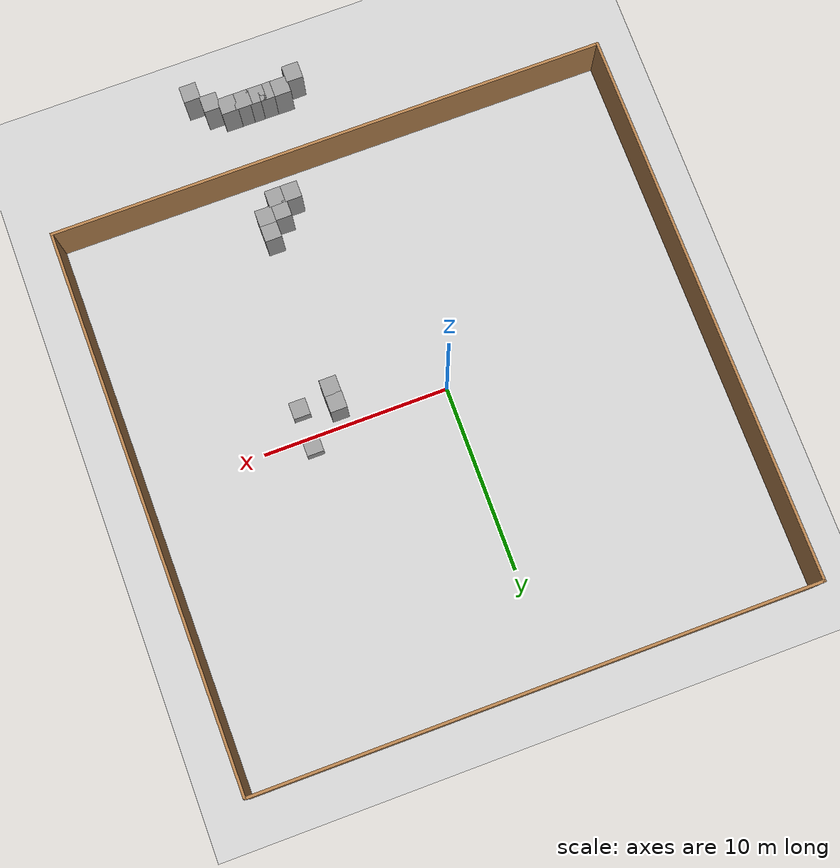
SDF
<sdf version="1.7">
 <world name="default">
  <model name="ground_plane">
   <static>1</static>
   <link name="link">
    <collision name="collision">
     <geometry><plane><normal>0 0 1</normal><size>100 100</size></plane></geometry>
     <surface><friction><ode><mu>100</mu><mu2>50</mu2></ode></friction></surface>
    </collision>
    <visual name="visual">
     <cast_shadows>0</cast_shadows>
     <geometry><plane><normal>0 0 1</normal><size>100 100</size></plane></geometry>
     <material>
      <script><uri>file://media/materials/scripts/gazebo.material</uri><name>Gazebo/Grey</name></script>
     </material>
    </visual>
   </link>
  </model>
  <model name="unit_box">
   <link name="link">
    <inertial>
     <mass>1</mass>
     <inertia>
      <ixx>0.166667</ixx>
      <ixy>0</ixy>
      <ixz>0</ixz>
      <iyy>0.166667</iyy>
      <iyz>0</iyz>
      <izz>0.166667</izz>
     </inertia>
    </inertial>
    <visual name="visual">
     <geometry><box><size>0.9 0.9 0.9</size></box></geometry>
     <material>
      <script><name>Gazebo/Grey</name><uri>file://media/materials/scripts/gazebo.material</uri></script>
      <shader type="pixel"><normal_map>__default__</normal_map></shader>
      <ambient>0.3 0.3 0.3 1</ambient>
      <diffuse>0.7 0.7 0.7 1</diffuse>
      <specular>0.01 0.01 0.01 1</specular>
      <emissive>0 0 0 1</emissive>
     </material>
    </visual>
    <collision name="collision">
     <geometry><box><size>0.9 0.9 0.9</size></box></geometry>
     <surface>
      <friction>
       <ode><mu>1</mu><mu2>1</mu2><fdir1>0 0 0</fdir1><slip1>0</slip1><slip2>0</slip2></ode>
       <torsional>
        <coefficient>1</coefficient>
        <patch_radius>0</patch_radius>
        <surface_radius>0</surface_radius>
        <use_patch_radius>1</use_patch_radius>
        <ode><slip>0</slip></ode>
       </torsional>
      </friction>
      <bounce><restitution_coefficient>0</restitution_coefficient><threshold>1e+06</threshold></bounce>
      <contact>
       <collide_without_contact>0</collide_without_contact>
       <collide_without_contact_bitmask>1</collide_without_contact_bitmask>
       <collide_bitmask>1</collide_bitmask>
       <ode>
        <soft_cfm>0</soft_cfm>
        <soft_erp>0.2</soft_erp>
        <kp>1e+13</kp>
        <kd>1</kd>
        <max_vel>0.01</max_vel>
        <min_depth>0</min_depth>
       </ode>
       <bullet>
        <split_impulse>1</split_impulse>
        <split_impulse_penetration_threshold>-0.01</split_impulse_penetration_threshold>
        <soft_cfm>0</soft_cfm>
        <soft_erp>0.2</soft_erp>
        <kp>1e+13</kp>
        <kd>1</kd>
       </bullet>
      </contact>
     </surface>
    </collision>
   </link>
   <link name="link_clone_clone">
    <inertial>
     <mass>1</mass>
     <inertia>
      <ixx>0.166667</ixx>
      <ixy>0</ixy>
      <ixz>0</ixz>
      <iyy>0.166667</iyy>
      <iyz>0</iyz>
      <izz>0.166667</izz>
     </inertia>
    </inertial>
    <pose>-0.004595 2.04241 0 0 -0 0</pose>
    <visual name="visual">
     <geometry><box><size>0.9 0.9 0.9</size></box></geometry>
     <material>
      <script><name>Gazebo/Grey</name><uri>file://media/materials/scripts/gazebo.material</uri></script>
      <shader type="pixel"><normal_map>__default__</normal_map></shader>
      <ambient>0.3 0.3 0.3 1</ambient>
      <diffuse>0.7 0.7 0.7 1</diffuse>
      <specular>0.01 0.01 0.01 1</specular>
      <emissive>0 0 0 1</emissive>
     </material>
    </visual>
    <collision name="collision">
     <geometry><box><size>0.9 0.9 0.9</size></box></geometry>
     <surface>
      <friction>
       <ode><mu>1</mu><mu2>1</mu2><fdir1>0 0 0</fdir1><slip1>0</slip1><slip2>0</slip2></ode>
       <torsional>
        <coefficient>1</coefficient>
        <patch_radius>0</patch_radius>
        <surface_radius>0</surface_radius>
        <use_patch_radius>1</use_patch_radius>
        <ode><slip>0</slip></ode>
       </torsional>
      </friction>
      <bounce><restitution_coefficient>0</restitution_coefficient><threshold>1e+06</threshold></bounce>
      <contact>
       <collide_without_contact>0</collide_without_contact>
       <collide_without_contact_bitmask>1</collide_without_contact_bitmask>
       <collide_bitmask>1</collide_bitmask>
       <ode>
        <soft_cfm>0</soft_cfm>
        <soft_erp>0.2</soft_erp>
        <kp>1e+13</kp>
        <kd>1</kd>
        <max_vel>0.01</max_vel>
        <min_depth>0</min_depth>
       </ode>
       <bullet>
        <split_impulse>1</split_impulse>
        <split_impulse_penetration_threshold>-0.01</split_impulse_penetration_threshold>
        <soft_cfm>0</soft_cfm>
        <soft_erp>0.2</soft_erp>
        <kp>1e+13</kp>
        <kd>1</kd>
       </bullet>
      </contact>
     </surface>
    </collision>
   </link>
   <static>0</static>
   <pose>7.51627 -1.49726 0.45 0 -0 0</pose>
  </model>
  <model name="unit_box_clone">
   <link name="link_clone_0_clone_clone_3_clone_2_clone_22">
    <inertial>
     <mass>1</mass>
     <inertia>
      <ixx>0.166667</ixx>
      <ixy>0</ixy>
      <ixz>0</ixz>
      <iyy>0.166667</iyy>
      <iyz>0</iyz>
      <izz>0.166667</izz>
     </inertia>
    </inertial>
    <pose>14.7375 0.847307 0 0 -0 0</pose>
    <visual name="visual">
     <geometry><box><size>0.9 0.9 4</size></box></geometry>
     <material>
      <script><name>Gazebo/Grey</name><uri>file://media/materials/scripts/gazebo.material</uri></script>
      <shader type="pixel"><normal_map>__default__</normal_map></shader>
      <ambient>0.3 0.3 0.3 1</ambient>
      <diffuse>0.7 0.7 0.7 1</diffuse>
      <specular>0.01 0.01 0.01 1</specular>
      <emissive>0 0 0 1</emissive>
     </material>
    </visual>
    <collision name="collision">
     <geometry><box><size>0.9 0.9 4</size></box></geometry>
     <surface>
      <friction>
       <ode><mu>1</mu><mu2>1</mu2><fdir1>0 0 0</fdir1><slip1>0</slip1><slip2>0</slip2></ode>
       <torsional>
        <coefficient>1</coefficient>
        <patch_radius>0</patch_radius>
        <surface_radius>0</surface_radius>
        <use_patch_radius>1</use_patch_radius>
        <ode><slip>0</slip></ode>
       </torsional>
      </friction>
      <bounce><restitution_coefficient>0</restitution_coefficient><threshold>1e+06</threshold></bounce>
      <contact>
       <collide_without_contact>0</collide_without_contact>
       <collide_without_contact_bitmask>1</collide_without_contact_bitmask>
       <collide_bitmask>1</collide_bitmask>
       <ode>
        <soft_cfm>0</soft_cfm>
        <soft_erp>0.2</soft_erp>
        <kp>1e+13</kp>
        <kd>1</kd>
        <max_vel>0.01</max_vel>
        <min_depth>0</min_depth>
       </ode>
       <bullet>
        <split_impulse>1</split_impulse>
        <split_impulse_penetration_threshold>-0.01</split_impulse_penetration_threshold>
        <soft_cfm>0</soft_cfm>
        <soft_erp>0.2</soft_erp>
        <kp>1e+13</kp>
        <kd>1</kd>
       </bullet>
      </contact>
     </surface>
    </collision>
   </link>
   <link name="link_clone_0_clone_clone_3_clone_2_clone_23">
    <inertial>
     <mass>1</mass>
     <inertia>
      <ixx>0.166667</ixx>
      <ixy>0</ixy>
      <ixz>0</ixz>
      <iyy>0.166667</iyy>
      <iyz>0</iyz>
      <izz>0.166667</izz>
     </inertia>
    </inertial>
    <pose>13.9151 1.72247 0 0 -0 0</pose>
    <visual name="visual">
     <geometry><box><size>0.9 0.9 4</size></box></geometry>
     <material>
      <script><name>Gazebo/Grey</name><uri>file://media/materials/scripts/gazebo.material</uri></script>
      <shader type="pixel"><normal_map>__default__</normal_map></shader>
      <ambient>0.3 0.3 0.3 1</ambient>
      <diffuse>0.7 0.7 0.7 1</diffuse>
      <specular>0.01 0.01 0.01 1</specular>
      <emissive>0 0 0 1</emissive>
     </material>
    </visual>
    <collision name="collision">
     <geometry><box><size>0.9 0.9 4</size></box></geometry>
     <surface>
      <friction>
       <ode><mu>1</mu><mu2>1</mu2><fdir1>0 0 0</fdir1><slip1>0</slip1><slip2>0</slip2></ode>
       <torsional>
        <coefficient>1</coefficient>
        <patch_radius>0</patch_radius>
        <surface_radius>0</surface_radius>
        <use_patch_radius>1</use_patch_radius>
        <ode><slip>0</slip></ode>
       </torsional>
      </friction>
      <bounce><restitution_coefficient>0</restitution_coefficient><threshold>1e+06</threshold></bounce>
      <contact>
       <collide_without_contact>0</collide_without_contact>
       <collide_without_contact_bitmask>1</collide_without_contact_bitmask>
       <collide_bitmask>1</collide_bitmask>
       <ode>
        <soft_cfm>0</soft_cfm>
        <soft_erp>0.2</soft_erp>
        <kp>1e+13</kp>
        <kd>1</kd>
        <max_vel>0.01</max_vel>
        <min_depth>0</min_depth>
       </ode>
       <bullet>
        <split_impulse>1</split_impulse>
        <split_impulse_penetration_threshold>-0.01</split_impulse_penetration_threshold>
        <soft_cfm>0</soft_cfm>
        <soft_erp>0.2</soft_erp>
        <kp>1e+13</kp>
        <kd>1</kd>
       </bullet>
      </contact>
     </surface>
    </collision>
   </link>
   <link name="link_clone_0_clone_clone_3_clone_2_clone_24">
    <inertial>
     <mass>1</mass>
     <inertia>
      <ixx>0.166667</ixx>
      <ixy>0</ixy>
      <ixz>0</ixz>
      <iyy>0.166667</iyy>
      <iyz>0</iyz>
      <izz>0.166667</izz>
     </inertia>
    </inertial>
    <pose>13.0875 2.15167 0 0 -0 0</pose>
    <visual name="visual">
     <geometry><box><size>0.9 0.9 4</size></box></geometry>
     <material>
      <script><name>Gazebo/Grey</name><uri>file://media/materials/scripts/gazebo.material</uri></script>
      <shader type="pixel"><normal_map>__default__</normal_map></shader>
      <ambient>0.3 0.3 0.3 1</ambient>
      <diffuse>0.7 0.7 0.7 1</diffuse>
      <specular>0.01 0.01 0.01 1</specular>
      <emissive>0 0 0 1</emissive>
     </material>
    </visual>
    <collision name="collision">
     <geometry><box><size>0.9 0.9 4</size></box></geometry>
     <surface>
      <friction>
       <ode><mu>1</mu><mu2>1</mu2><fdir1>0 0 0</fdir1><slip1>0</slip1><slip2>0</slip2></ode>
       <torsional>
        <coefficient>1</coefficient>
        <patch_radius>0</patch_radius>
        <surface_radius>0</surface_radius>
        <use_patch_radius>1</use_patch_radius>
        <ode><slip>0</slip></ode>
       </torsional>
      </friction>
      <bounce><restitution_coefficient>0</restitution_coefficient><threshold>1e+06</threshold></bounce>
      <contact>
       <collide_without_contact>0</collide_without_contact>
       <collide_without_contact_bitmask>1</collide_without_contact_bitmask>
       <collide_bitmask>1</collide_bitmask>
       <ode>
        <soft_cfm>0</soft_cfm>
        <soft_erp>0.2</soft_erp>
        <kp>1e+13</kp>
        <kd>1</kd>
        <max_vel>0.01</max_vel>
        <min_depth>0</min_depth>
       </ode>
       <bullet>
        <split_impulse>1</split_impulse>
        <split_impulse_penetration_threshold>-0.01</split_impulse_penetration_threshold>
        <soft_cfm>0</soft_cfm>
        <soft_erp>0.2</soft_erp>
        <kp>1e+13</kp>
        <kd>1</kd>
       </bullet>
      </contact>
     </surface>
    </collision>
   </link>
   <link name="link_clone_0_clone_clone_3_clone_2_clone_25">
    <inertial>
     <mass>1</mass>
     <inertia>
      <ixx>0.166667</ixx>
      <ixy>0</ixy>
      <ixz>0</ixz>
      <iyy>0.166667</iyy>
      <iyz>0</iyz>
      <izz>0.166667</izz>
     </inertia>
    </inertial>
    <pose>12.303 2.15067 0 0 -0 0</pose>
    <visual name="visual">
     <geometry><box><size>0.9 0.9 4</size></box></geometry>
     <material>
      <script><name>Gazebo/Grey</name><uri>file://media/materials/scripts/gazebo.material</uri></script>
      <shader type="pixel"><normal_map>__default__</normal_map></shader>
      <ambient>0.3 0.3 0.3 1</ambient>
      <diffuse>0.7 0.7 0.7 1</diffuse>
      <specular>0.01 0.01 0.01 1</specular>
      <emissive>0 0 0 1</emissive>
     </material>
    </visual>
    <collision name="collision">
     <geometry><box><size>0.9 0.9 4</size></box></geometry>
     <surface>
      <friction>
       <ode><mu>1</mu><mu2>1</mu2><fdir1>0 0 0</fdir1><slip1>0</slip1><slip2>0</slip2></ode>
       <torsional>
        <coefficient>1</coefficient>
        <patch_radius>0</patch_radius>
        <surface_radius>0</surface_radius>
        <use_patch_radius>1</use_patch_radius>
        <ode><slip>0</slip></ode>
       </torsional>
      </friction>
      <bounce><restitution_coefficient>0</restitution_coefficient><threshold>1e+06</threshold></bounce>
      <contact>
       <collide_without_contact>0</collide_without_contact>
       <collide_without_contact_bitmask>1</collide_without_contact_bitmask>
       <collide_bitmask>1</collide_bitmask>
       <ode>
        <soft_cfm>0</soft_cfm>
        <soft_erp>0.2</soft_erp>
        <kp>1e+13</kp>
        <kd>1</kd>
        <max_vel>0.01</max_vel>
        <min_depth>0</min_depth>
       </ode>
       <bullet>
        <split_impulse>1</split_impulse>
        <split_impulse_penetration_threshold>-0.01</split_impulse_penetration_threshold>
        <soft_cfm>0</soft_cfm>
        <soft_erp>0.2</soft_erp>
        <kp>1e+13</kp>
        <kd>1</kd>
       </bullet>
      </contact>
     </surface>
    </collision>
   </link>
   <link name="link_clone_0_clone_clone_3_clone_2_clone_26">
    <inertial>
     <mass>1</mass>
     <inertia>
      <ixx>0.166667</ixx>
      <ixy>0</ixy>
      <ixz>0</ixz>
      <iyy>0.166667</iyy>
      <iyz>0</iyz>
      <izz>0.166667</izz>
     </inertia>
    </inertial>
    <pose>11.5113 2.15271 0 0 -0 0</pose>
    <visual name="visual">
     <geometry><box><size>0.9 0.9 4</size></box></geometry>
     <material>
      <script><name>Gazebo/Grey</name><uri>file://media/materials/scripts/gazebo.material</uri></script>
      <shader type="pixel"><normal_map>__default__</normal_map></shader>
      <ambient>0.3 0.3 0.3 1</ambient>
      <diffuse>0.7 0.7 0.7 1</diffuse>
      <specular>0.01 0.01 0.01 1</specular>
      <emissive>0 0 0 1</emissive>
     </material>
    </visual>
    <collision name="collision">
     <geometry><box><size>0.9 0.9 4</size></box></geometry>
     <surface>
      <friction>
       <ode><mu>1</mu><mu2>1</mu2><fdir1>0 0 0</fdir1><slip1>0</slip1><slip2>0</slip2></ode>
       <torsional>
        <coefficient>1</coefficient>
        <patch_radius>0</patch_radius>
        <surface_radius>0</surface_radius>
        <use_patch_radius>1</use_patch_radius>
        <ode><slip>0</slip></ode>
       </torsional>
      </friction>
      <bounce><restitution_coefficient>0</restitution_coefficient><threshold>1e+06</threshold></bounce>
      <contact>
       <collide_without_contact>0</collide_without_contact>
       <collide_without_contact_bitmask>1</collide_without_contact_bitmask>
       <collide_bitmask>1</collide_bitmask>
       <ode>
        <soft_cfm>0</soft_cfm>
        <soft_erp>0.2</soft_erp>
        <kp>1e+13</kp>
        <kd>1</kd>
        <max_vel>0.01</max_vel>
        <min_depth>0</min_depth>
       </ode>
       <bullet>
        <split_impulse>1</split_impulse>
        <split_impulse_penetration_threshold>-0.01</split_impulse_penetration_threshold>
        <soft_cfm>0</soft_cfm>
        <soft_erp>0.2</soft_erp>
        <kp>1e+13</kp>
        <kd>1</kd>
       </bullet>
      </contact>
     </surface>
    </collision>
   </link>
   <link name="link_clone_0_clone_clone_3_clone_2_clone_27">
    <inertial>
     <mass>1</mass>
     <inertia>
      <ixx>0.166667</ixx>
      <ixy>0</ixy>
      <ixz>0</ixz>
      <iyy>0.166667</iyy>
      <iyz>0</iyz>
      <izz>0.166667</izz>
     </inertia>
    </inertial>
    <pose>10.9377 2.1528 0 0 -0 0</pose>
    <visual name="visual">
     <geometry><box><size>0.9 0.9 4</size></box></geometry>
     <material>
      <script><name>Gazebo/Grey</name><uri>file://media/materials/scripts/gazebo.material</uri></script>
      <shader type="pixel"><normal_map>__default__</normal_map></shader>
      <ambient>0.3 0.3 0.3 1</ambient>
      <diffuse>0.7 0.7 0.7 1</diffuse>
      <specular>0.01 0.01 0.01 1</specular>
      <emissive>0 0 0 1</emissive>
     </material>
    </visual>
    <collision name="collision">
     <geometry><box><size>0.9 0.9 4</size></box></geometry>
     <surface>
      <friction>
       <ode><mu>1</mu><mu2>1</mu2><fdir1>0 0 0</fdir1><slip1>0</slip1><slip2>0</slip2></ode>
       <torsional>
        <coefficient>1</coefficient>
        <patch_radius>0</patch_radius>
        <surface_radius>0</surface_radius>
        <use_patch_radius>1</use_patch_radius>
        <ode><slip>0</slip></ode>
       </torsional>
      </friction>
      <bounce><restitution_coefficient>0</restitution_coefficient><threshold>1e+06</threshold></bounce>
      <contact>
       <collide_without_contact>0</collide_without_contact>
       <collide_without_contact_bitmask>1</collide_without_contact_bitmask>
       <collide_bitmask>1</collide_bitmask>
       <ode>
        <soft_cfm>0</soft_cfm>
        <soft_erp>0.2</soft_erp>
        <kp>1e+13</kp>
        <kd>1</kd>
        <max_vel>0.01</max_vel>
        <min_depth>0</min_depth>
       </ode>
       <bullet>
        <split_impulse>1</split_impulse>
        <split_impulse_penetration_threshold>-0.01</split_impulse_penetration_threshold>
        <soft_cfm>0</soft_cfm>
        <soft_erp>0.2</soft_erp>
        <kp>1e+13</kp>
        <kd>1</kd>
       </bullet>
      </contact>
     </surface>
    </collision>
   </link>
   <link name="link_clone_0_clone_clone_3_clone_2_clone_28">
    <inertial>
     <mass>1</mass>
     <inertia>
      <ixx>0.166667</ixx>
      <ixy>0</ixy>
      <ixz>0</ixz>
      <iyy>0.166667</iyy>
      <iyz>0</iyz>
      <izz>0.166667</izz>
     </inertia>
    </inertial>
    <pose>10.1752 2.15883 0 0 -0 0</pose>
    <visual name="visual">
     <geometry><box><size>0.9 0.9 4</size></box></geometry>
     <material>
      <script><name>Gazebo/Grey</name><uri>file://media/materials/scripts/gazebo.material</uri></script>
      <shader type="pixel"><normal_map>__default__</normal_map></shader>
      <ambient>0.3 0.3 0.3 1</ambient>
      <diffuse>0.7 0.7 0.7 1</diffuse>
      <specular>0.01 0.01 0.01 1</specular>
      <emissive>0 0 0 1</emissive>
     </material>
    </visual>
    <collision name="collision">
     <geometry><box><size>0.9 0.9 4</size></box></geometry>
     <surface>
      <friction>
       <ode><mu>1</mu><mu2>1</mu2><fdir1>0 0 0</fdir1><slip1>0</slip1><slip2>0</slip2></ode>
       <torsional>
        <coefficient>1</coefficient>
        <patch_radius>0</patch_radius>
        <surface_radius>0</surface_radius>
        <use_patch_radius>1</use_patch_radius>
        <ode><slip>0</slip></ode>
       </torsional>
      </friction>
      <bounce><restitution_coefficient>0</restitution_coefficient><threshold>1e+06</threshold></bounce>
      <contact>
       <collide_without_contact>0</collide_without_contact>
       <collide_without_contact_bitmask>1</collide_without_contact_bitmask>
       <collide_bitmask>1</collide_bitmask>
       <ode>
        <soft_cfm>0</soft_cfm>
        <soft_erp>0.2</soft_erp>
        <kp>1e+13</kp>
        <kd>1</kd>
        <max_vel>0.01</max_vel>
        <min_depth>0</min_depth>
       </ode>
       <bullet>
        <split_impulse>1</split_impulse>
        <split_impulse_penetration_threshold>-0.01</split_impulse_penetration_threshold>
        <soft_cfm>0</soft_cfm>
        <soft_erp>0.2</soft_erp>
        <kp>1e+13</kp>
        <kd>1</kd>
       </bullet>
      </contact>
     </surface>
    </collision>
   </link>
   <link name="link_clone_0_clone_clone_3_clone_2_clone_29">
    <inertial>
     <mass>1</mass>
     <inertia>
      <ixx>0.166667</ixx>
      <ixy>0</ixy>
      <ixz>0</ixz>
      <iyy>0.166667</iyy>
      <iyz>0</iyz>
      <izz>0.166667</izz>
     </inertia>
    </inertial>
    <pose>9.32821 1.61569 0 0 -0 0</pose>
    <visual name="visual">
     <geometry><box><size>0.9 0.9 4</size></box></geometry>
     <material>
      <script><name>Gazebo/Grey</name><uri>file://media/materials/scripts/gazebo.material</uri></script>
      <shader type="pixel"><normal_map>__default__</normal_map></shader>
      <ambient>0.3 0.3 0.3 1</ambient>
      <diffuse>0.7 0.7 0.7 1</diffuse>
      <specular>0.01 0.01 0.01 1</specular>
      <emissive>0 0 0 1</emissive>
     </material>
    </visual>
    <collision name="collision">
     <geometry><box><size>0.9 0.9 4</size></box></geometry>
     <surface>
      <friction>
       <ode><mu>1</mu><mu2>1</mu2><fdir1>0 0 0</fdir1><slip1>0</slip1><slip2>0</slip2></ode>
       <torsional>
        <coefficient>1</coefficient>
        <patch_radius>0</patch_radius>
        <surface_radius>0</surface_radius>
        <use_patch_radius>1</use_patch_radius>
        <ode><slip>0</slip></ode>
       </torsional>
      </friction>
      <bounce><restitution_coefficient>0</restitution_coefficient><threshold>1e+06</threshold></bounce>
      <contact>
       <collide_without_contact>0</collide_without_contact>
       <collide_without_contact_bitmask>1</collide_without_contact_bitmask>
       <collide_bitmask>1</collide_bitmask>
       <ode>
        <soft_cfm>0</soft_cfm>
        <soft_erp>0.2</soft_erp>
        <kp>1e+13</kp>
        <kd>1</kd>
        <max_vel>0.01</max_vel>
        <min_depth>0</min_depth>
       </ode>
       <bullet>
        <split_impulse>1</split_impulse>
        <split_impulse_penetration_threshold>-0.01</split_impulse_penetration_threshold>
        <soft_cfm>0</soft_cfm>
        <soft_erp>0.2</soft_erp>
        <kp>1e+13</kp>
        <kd>1</kd>
       </bullet>
      </contact>
     </surface>
    </collision>
   </link>
   <link name="link_clone_0_clone_clone_3_clone_2_clone_33">
    <inertial>
     <mass>1</mass>
     <inertia>
      <ixx>0.166667</ixx>
      <ixy>0</ixy>
      <ixz>0</ixz>
      <iyy>0.166667</iyy>
      <iyz>0</iyz>
      <izz>0.166667</izz>
     </inertia>
    </inertial>
    <pose>11.5534 7.77866 0 0 -0 0</pose>
    <visual name="visual">
     <geometry><box><size>0.9 0.9 4</size></box></geometry>
     <material>
      <script><name>Gazebo/Grey</name><uri>file://media/materials/scripts/gazebo.material</uri></script>
      <shader type="pixel"><normal_map>__default__</normal_map></shader>
      <ambient>0.3 0.3 0.3 1</ambient>
      <diffuse>0.7 0.7 0.7 1</diffuse>
      <specular>0.01 0.01 0.01 1</specular>
      <emissive>0 0 0 1</emissive>
     </material>
    </visual>
    <collision name="collision">
     <geometry><box><size>0.9 0.9 4</size></box></geometry>
     <surface>
      <friction>
       <ode><mu>1</mu><mu2>1</mu2><fdir1>0 0 0</fdir1><slip1>0</slip1><slip2>0</slip2></ode>
       <torsional>
        <coefficient>1</coefficient>
        <patch_radius>0</patch_radius>
        <surface_radius>0</surface_radius>
        <use_patch_radius>1</use_patch_radius>
        <ode><slip>0</slip></ode>
       </torsional>
      </friction>
      <bounce><restitution_coefficient>0</restitution_coefficient><threshold>1e+06</threshold></bounce>
      <contact>
       <collide_without_contact>0</collide_without_contact>
       <collide_without_contact_bitmask>1</collide_without_contact_bitmask>
       <collide_bitmask>1</collide_bitmask>
       <ode>
        <soft_cfm>0</soft_cfm>
        <soft_erp>0.2</soft_erp>
        <kp>1e+13</kp>
        <kd>1</kd>
        <max_vel>0.01</max_vel>
        <min_depth>0</min_depth>
       </ode>
       <bullet>
        <split_impulse>1</split_impulse>
        <split_impulse_penetration_threshold>-0.01</split_impulse_penetration_threshold>
        <soft_cfm>0</soft_cfm>
        <soft_erp>0.2</soft_erp>
        <kp>1e+13</kp>
        <kd>1</kd>
       </bullet>
      </contact>
     </surface>
    </collision>
   </link>
   <link name="link_clone_0_clone_clone_3_clone_2_clone_34">
    <inertial>
     <mass>1</mass>
     <inertia>
      <ixx>0.166667</ixx>
      <ixy>0</ixy>
      <ixz>0</ixz>
      <iyy>0.166667</iyy>
      <iyz>0</iyz>
      <izz>0.166667</izz>
     </inertia>
    </inertial>
    <pose>12.4188 7.78202 0 0 -0 0</pose>
    <visual name="visual">
     <geometry><box><size>0.9 0.9 4</size></box></geometry>
     <material>
      <script><name>Gazebo/Grey</name><uri>file://media/materials/scripts/gazebo.material</uri></script>
      <shader type="pixel"><normal_map>__default__</normal_map></shader>
      <ambient>0.3 0.3 0.3 1</ambient>
      <diffuse>0.7 0.7 0.7 1</diffuse>
      <specular>0.01 0.01 0.01 1</specular>
      <emissive>0 0 0 1</emissive>
     </material>
    </visual>
    <collision name="collision">
     <geometry><box><size>0.9 0.9 4</size></box></geometry>
     <surface>
      <friction>
       <ode><mu>1</mu><mu2>1</mu2><fdir1>0 0 0</fdir1><slip1>0</slip1><slip2>0</slip2></ode>
       <torsional>
        <coefficient>1</coefficient>
        <patch_radius>0</patch_radius>
        <surface_radius>0</surface_radius>
        <use_patch_radius>1</use_patch_radius>
        <ode><slip>0</slip></ode>
       </torsional>
      </friction>
      <bounce><restitution_coefficient>0</restitution_coefficient><threshold>1e+06</threshold></bounce>
      <contact>
       <collide_without_contact>0</collide_without_contact>
       <collide_without_contact_bitmask>1</collide_without_contact_bitmask>
       <collide_bitmask>1</collide_bitmask>
       <ode>
        <soft_cfm>0</soft_cfm>
        <soft_erp>0.2</soft_erp>
        <kp>1e+13</kp>
        <kd>1</kd>
        <max_vel>0.01</max_vel>
        <min_depth>0</min_depth>
       </ode>
       <bullet>
        <split_impulse>1</split_impulse>
        <split_impulse_penetration_threshold>-0.01</split_impulse_penetration_threshold>
        <soft_cfm>0</soft_cfm>
        <soft_erp>0.2</soft_erp>
        <kp>1e+13</kp>
        <kd>1</kd>
       </bullet>
      </contact>
     </surface>
    </collision>
   </link>
   <link name="link_clone_0_clone_clone_3_clone_2_clone_36">
    <inertial>
     <mass>1</mass>
     <inertia>
      <ixx>0.166667</ixx>
      <ixy>0</ixy>
      <ixz>0</ixz>
      <iyy>0.166667</iyy>
      <iyz>0</iyz>
      <izz>0.166667</izz>
     </inertia>
    </inertial>
    <pose>13.2399 8.61339 0 0 -0 0</pose>
    <visual name="visual">
     <geometry><box><size>0.9 0.9 4</size></box></geometry>
     <material>
      <script><name>Gazebo/Grey</name><uri>file://media/materials/scripts/gazebo.material</uri></script>
      <shader type="pixel"><normal_map>__default__</normal_map></shader>
      <ambient>0.3 0.3 0.3 1</ambient>
      <diffuse>0.7 0.7 0.7 1</diffuse>
      <specular>0.01 0.01 0.01 1</specular>
      <emissive>0 0 0 1</emissive>
     </material>
    </visual>
    <collision name="collision">
     <geometry><box><size>0.9 0.9 4</size></box></geometry>
     <surface>
      <friction>
       <ode><mu>1</mu><mu2>1</mu2><fdir1>0 0 0</fdir1><slip1>0</slip1><slip2>0</slip2></ode>
       <torsional>
        <coefficient>1</coefficient>
        <patch_radius>0</patch_radius>
        <surface_radius>0</surface_radius>
        <use_patch_radius>1</use_patch_radius>
        <ode><slip>0</slip></ode>
       </torsional>
      </friction>
      <bounce><restitution_coefficient>0</restitution_coefficient><threshold>1e+06</threshold></bounce>
      <contact>
       <collide_without_contact>0</collide_without_contact>
       <collide_without_contact_bitmask>1</collide_without_contact_bitmask>
       <collide_bitmask>1</collide_bitmask>
       <ode>
        <soft_cfm>0</soft_cfm>
        <soft_erp>0.2</soft_erp>
        <kp>1e+13</kp>
        <kd>1</kd>
        <max_vel>0.01</max_vel>
        <min_depth>0</min_depth>
       </ode>
       <bullet>
        <split_impulse>1</split_impulse>
        <split_impulse_penetration_threshold>-0.01</split_impulse_penetration_threshold>
        <soft_cfm>0</soft_cfm>
        <soft_erp>0.2</soft_erp>
        <kp>1e+13</kp>
        <kd>1</kd>
       </bullet>
      </contact>
     </surface>
    </collision>
   </link>
   <link name="link_clone_0_clone_clone_3_clone_2_clone_37">
    <inertial>
     <mass>1</mass>
     <inertia>
      <ixx>0.166667</ixx>
      <ixy>0</ixy>
      <ixz>0</ixz>
      <iyy>0.166667</iyy>
      <iyz>0</iyz>
      <izz>0.166667</izz>
     </inertia>
    </inertial>
    <pose>13.2375 9.46863 0 0 -0 0</pose>
    <visual name="visual">
     <geometry><box><size>0.9 0.9 4</size></box></geometry>
     <material>
      <script><name>Gazebo/Grey</name><uri>file://media/materials/scripts/gazebo.material</uri></script>
      <shader type="pixel"><normal_map>__default__</normal_map></shader>
      <ambient>0.3 0.3 0.3 1</ambient>
      <diffuse>0.7 0.7 0.7 1</diffuse>
      <specular>0.01 0.01 0.01 1</specular>
      <emissive>0 0 0 1</emissive>
     </material>
    </visual>
    <collision name="collision">
     <geometry><box><size>0.9 0.9 4</size></box></geometry>
     <surface>
      <friction>
       <ode><mu>1</mu><mu2>1</mu2><fdir1>0 0 0</fdir1><slip1>0</slip1><slip2>0</slip2></ode>
       <torsional>
        <coefficient>1</coefficient>
        <patch_radius>0</patch_radius>
        <surface_radius>0</surface_radius>
        <use_patch_radius>1</use_patch_radius>
        <ode><slip>0</slip></ode>
       </torsional>
      </friction>
      <bounce><restitution_coefficient>0</restitution_coefficient><threshold>1e+06</threshold></bounce>
      <contact>
       <collide_without_contact>0</collide_without_contact>
       <collide_without_contact_bitmask>1</collide_without_contact_bitmask>
       <collide_bitmask>1</collide_bitmask>
       <ode>
        <soft_cfm>0</soft_cfm>
        <soft_erp>0.2</soft_erp>
        <kp>1e+13</kp>
        <kd>1</kd>
        <max_vel>0.01</max_vel>
        <min_depth>0</min_depth>
       </ode>
       <bullet>
        <split_impulse>1</split_impulse>
        <split_impulse_penetration_threshold>-0.01</split_impulse_penetration_threshold>
        <soft_cfm>0</soft_cfm>
        <soft_erp>0.2</soft_erp>
        <kp>1e+13</kp>
        <kd>1</kd>
       </bullet>
      </contact>
     </surface>
    </collision>
   </link>
   <link name="link_clone_0_clone_clone_3_clone_2_clone_38">
    <inertial>
     <mass>1</mass>
     <inertia>
      <ixx>0.166667</ixx>
      <ixy>0</ixy>
      <ixz>0</ixz>
      <iyy>0.166667</iyy>
      <iyz>0</iyz>
      <izz>0.166667</izz>
     </inertia>
    </inertial>
    <pose>12.3724 8.56503 0 0 -0 0</pose>
    <visual name="visual">
     <geometry><box><size>0.9 0.9 4</size></box></geometry>
     <material>
      <script><name>Gazebo/Grey</name><uri>file://media/materials/scripts/gazebo.material</uri></script>
      <shader type="pixel"><normal_map>__default__</normal_map></shader>
      <ambient>0.3 0.3 0.3 1</ambient>
      <diffuse>0.7 0.7 0.7 1</diffuse>
      <specular>0.01 0.01 0.01 1</specular>
      <emissive>0 0 0 1</emissive>
     </material>
    </visual>
    <collision name="collision">
     <geometry><box><size>0.9 0.9 4</size></box></geometry>
     <surface>
      <friction>
       <ode><mu>1</mu><mu2>1</mu2><fdir1>0 0 0</fdir1><slip1>0</slip1><slip2>0</slip2></ode>
       <torsional>
        <coefficient>1</coefficient>
        <patch_radius>0</patch_radius>
        <surface_radius>0</surface_radius>
        <use_patch_radius>1</use_patch_radius>
        <ode><slip>0</slip></ode>
       </torsional>
      </friction>
      <bounce><restitution_coefficient>0</restitution_coefficient><threshold>1e+06</threshold></bounce>
      <contact>
       <collide_without_contact>0</collide_without_contact>
       <collide_without_contact_bitmask>1</collide_without_contact_bitmask>
       <collide_bitmask>1</collide_bitmask>
       <ode>
        <soft_cfm>0</soft_cfm>
        <soft_erp>0.2</soft_erp>
        <kp>1e+13</kp>
        <kd>1</kd>
        <max_vel>0.01</max_vel>
        <min_depth>0</min_depth>
       </ode>
       <bullet>
        <split_impulse>1</split_impulse>
        <split_impulse_penetration_threshold>-0.01</split_impulse_penetration_threshold>
        <soft_cfm>0</soft_cfm>
        <soft_erp>0.2</soft_erp>
        <kp>1e+13</kp>
        <kd>1</kd>
       </bullet>
      </contact>
     </surface>
    </collision>
   </link>
   <link name="link_clone_0_clone_clone_3_clone_2_clone_44">
    <inertial>
     <mass>1</mass>
     <inertia>
      <ixx>0.166667</ixx>
      <ixy>0</ixy>
      <ixz>0</ixz>
      <iyy>0.166667</iyy>
      <iyz>0</iyz>
      <izz>0.166667</izz>
     </inertia>
    </inertial>
    <pose>13.1153 18.1869 0 0 -0 0</pose>
    <visual name="visual">
     <geometry><box><size>0.9 0.9 4</size></box></geometry>
     <material>
      <script><name>Gazebo/Grey</name><uri>file://media/materials/scripts/gazebo.material</uri></script>
      <shader type="pixel"><normal_map>__default__</normal_map></shader>
      <ambient>0.3 0.3 0.3 1</ambient>
      <diffuse>0.7 0.7 0.7 1</diffuse>
      <specular>0.01 0.01 0.01 1</specular>
      <emissive>0 0 0 1</emissive>
     </material>
    </visual>
    <collision name="collision">
     <geometry><box><size>0.9 0.9 4</size></box></geometry>
     <surface>
      <friction>
       <ode><mu>1</mu><mu2>1</mu2><fdir1>0 0 0</fdir1><slip1>0</slip1><slip2>0</slip2></ode>
       <torsional>
        <coefficient>1</coefficient>
        <patch_radius>0</patch_radius>
        <surface_radius>0</surface_radius>
        <use_patch_radius>1</use_patch_radius>
        <ode><slip>0</slip></ode>
       </torsional>
      </friction>
      <bounce><restitution_coefficient>0</restitution_coefficient><threshold>1e+06</threshold></bounce>
      <contact>
       <collide_without_contact>0</collide_without_contact>
       <collide_without_contact_bitmask>1</collide_without_contact_bitmask>
       <collide_bitmask>1</collide_bitmask>
       <ode>
        <soft_cfm>0</soft_cfm>
        <soft_erp>0.2</soft_erp>
        <kp>1e+13</kp>
        <kd>1</kd>
        <max_vel>0.01</max_vel>
        <min_depth>0</min_depth>
       </ode>
       <bullet>
        <split_impulse>1</split_impulse>
        <split_impulse_penetration_threshold>-0.01</split_impulse_penetration_threshold>
        <soft_cfm>0</soft_cfm>
        <soft_erp>0.2</soft_erp>
        <kp>1e+13</kp>
        <kd>1</kd>
       </bullet>
      </contact>
     </surface>
    </collision>
   </link>
   <link name="link_clone_0_clone_clone_3_clone_2_clone_45">
    <inertial>
     <mass>1</mass>
     <inertia>
      <ixx>0.166667</ixx>
      <ixy>0</ixy>
      <ixz>0</ixz>
      <iyy>0.166667</iyy>
      <iyz>0</iyz>
      <izz>0.166667</izz>
     </inertia>
    </inertial>
    <pose>13.1006 19.0523 0 0 -0 0</pose>
    <visual name="visual">
     <geometry><box><size>0.9 0.9 4</size></box></geometry>
     <material>
      <script><name>Gazebo/Grey</name><uri>file://media/materials/scripts/gazebo.material</uri></script>
      <shader type="pixel"><normal_map>__default__</normal_map></shader>
      <ambient>0.3 0.3 0.3 1</ambient>
      <diffuse>0.7 0.7 0.7 1</diffuse>
      <specular>0.01 0.01 0.01 1</specular>
      <emissive>0 0 0 1</emissive>
     </material>
    </visual>
    <collision name="collision">
     <geometry><box><size>0.9 0.9 4</size></box></geometry>
     <surface>
      <friction>
       <ode><mu>1</mu><mu2>1</mu2><fdir1>0 0 0</fdir1><slip1>0</slip1><slip2>0</slip2></ode>
       <torsional>
        <coefficient>1</coefficient>
        <patch_radius>0</patch_radius>
        <surface_radius>0</surface_radius>
        <use_patch_radius>1</use_patch_radius>
        <ode><slip>0</slip></ode>
       </torsional>
      </friction>
      <bounce><restitution_coefficient>0</restitution_coefficient><threshold>1e+06</threshold></bounce>
      <contact>
       <collide_without_contact>0</collide_without_contact>
       <collide_without_contact_bitmask>1</collide_without_contact_bitmask>
       <collide_bitmask>1</collide_bitmask>
       <ode>
        <soft_cfm>0</soft_cfm>
        <soft_erp>0.2</soft_erp>
        <kp>1e+13</kp>
        <kd>1</kd>
        <max_vel>0.01</max_vel>
        <min_depth>0</min_depth>
       </ode>
       <bullet>
        <split_impulse>1</split_impulse>
        <split_impulse_penetration_threshold>-0.01</split_impulse_penetration_threshold>
        <soft_cfm>0</soft_cfm>
        <soft_erp>0.2</soft_erp>
        <kp>1e+13</kp>
        <kd>1</kd>
       </bullet>
      </contact>
     </surface>
    </collision>
   </link>
   <static>0</static>
   <pose>-7.42908 -19.9148 0.45 0 -0 0.00027</pose>
  </model>
  <model name="Untitled_0_clone_clone_clone_clone">
   <link name="Wall_31">
    <pose>-14.9249 0 0 0 0 -1.56374</pose>
    <inertial>
     <mass>1</mass>
     <inertia><ixx>1</ixx><ixy>0</ixy><ixz>0</ixz><iyy>1</iyy><iyz>0</iyz><izz>1</izz></inertia>
    </inertial>
    <visual name="Wall_31_Visual">
     <pose>0 0 1.25 0 -0 0</pose>
     <geometry><box><size>30.0711 0.15 4</size></box></geometry>
     <material>
      <script><uri>file://media/materials/scripts/gazebo.material</uri><name>Gazebo/Wood</name></script>
      <ambient>1 1 1 1</ambient>
      <shader type="pixel"><normal_map>__default__</normal_map></shader>
      <diffuse>0.7 0.7 0.7 1</diffuse>
      <specular>0.01 0.01 0.01 1</specular>
      <emissive>0 0 0 1</emissive>
     </material>
     <meta><layer>0</layer></meta>
    </visual>
    <collision name="Wall_31_Collision">
     <pose>0 0 1.25 0 -0 0</pose>
     <geometry><box><size>30.0711 0.15 4</size></box></geometry>
     <surface>
      <friction>
       <ode><mu>1</mu><mu2>1</mu2><fdir1>0 0 0</fdir1><slip1>0</slip1><slip2>0</slip2></ode>
       <torsional>
        <coefficient>1</coefficient>
        <patch_radius>0</patch_radius>
        <surface_radius>0</surface_radius>
        <use_patch_radius>1</use_patch_radius>
        <ode><slip>0</slip></ode>
       </torsional>
      </friction>
      <bounce><restitution_coefficient>0</restitution_coefficient><threshold>1e+06</threshold></bounce>
      <contact>
       <collide_without_contact>0</collide_without_contact>
       <collide_without_contact_bitmask>1</collide_without_contact_bitmask>
       <collide_bitmask>1</collide_bitmask>
       <ode>
        <soft_cfm>0</soft_cfm>
        <soft_erp>0.2</soft_erp>
        <kp>1e+13</kp>
        <kd>1</kd>
        <max_vel>0.01</max_vel>
        <min_depth>0</min_depth>
       </ode>
       <bullet>
        <split_impulse>1</split_impulse>
        <split_impulse_penetration_threshold>-0.01</split_impulse_penetration_threshold>
        <soft_cfm>0</soft_cfm>
        <soft_erp>0.2</soft_erp>
        <kp>1e+13</kp>
        <kd>1</kd>
       </bullet>
      </contact>
     </surface>
    </collision>
   </link>
   <link name="Wall_32">
    <pose>0.105683 -14.9481 0 0 -0 0.000807</pose>
    <inertial>
     <mass>1</mass>
     <inertia><ixx>1</ixx><ixy>0</ixy><ixz>0</ixz><iyy>1</iyy><iyz>0</iyz><izz>1</izz></inertia>
    </inertial>
    <visual name="Wall_32_Visual">
     <pose>0 0 1.25 0 -0 0</pose>
     <geometry><box><size>30 0.15 4</size></box></geometry>
     <material>
      <script><uri>file://media/materials/scripts/gazebo.material</uri><name>Gazebo/Wood</name></script>
      <ambient>1 1 1 1</ambient>
      <shader type="pixel"><normal_map>__default__</normal_map></shader>
      <diffuse>0.7 0.7 0.7 1</diffuse>
      <specular>0.01 0.01 0.01 1</specular>
      <emissive>0 0 0 1</emissive>
     </material>
     <meta><layer>0</layer></meta>
    </visual>
    <collision name="Wall_32_Collision">
     <pose>0 0 1.25 0 -0 0</pose>
     <geometry><box><size>30 0.15 4</size></box></geometry>
     <surface>
      <friction>
       <ode><mu>1</mu><mu2>1</mu2><fdir1>0 0 0</fdir1><slip1>0</slip1><slip2>0</slip2></ode>
       <torsional>
        <coefficient>1</coefficient>
        <patch_radius>0</patch_radius>
        <surface_radius>0</surface_radius>
        <use_patch_radius>1</use_patch_radius>
        <ode><slip>0</slip></ode>
       </torsional>
      </friction>
      <bounce><restitution_coefficient>0</restitution_coefficient><threshold>1e+06</threshold></bounce>
      <contact>
       <collide_without_contact>0</collide_without_contact>
       <collide_without_contact_bitmask>1</collide_without_contact_bitmask>
       <collide_bitmask>1</collide_bitmask>
       <ode>
        <soft_cfm>0</soft_cfm>
        <soft_erp>0.2</soft_erp>
        <kp>1e+13</kp>
        <kd>1</kd>
        <max_vel>0.01</max_vel>
        <min_depth>0</min_depth>
       </ode>
       <bullet>
        <split_impulse>1</split_impulse>
        <split_impulse_penetration_threshold>-0.01</split_impulse_penetration_threshold>
        <soft_cfm>0</soft_cfm>
        <soft_erp>0.2</soft_erp>
        <kp>1e+13</kp>
        <kd>1</kd>
       </bullet>
      </contact>
     </surface>
    </collision>
   </link>
   <link name="Wall_33">
    <pose>14.9844 -0.011083 0 0 -0 1.5739</pose>
    <inertial>
     <mass>1</mass>
     <inertia><ixx>1</ixx><ixy>0</ixy><ixz>0</ixz><iyy>1</iyy><iyz>0</iyz><izz>1</izz></inertia>
    </inertial>
    <visual name="Wall_33_Visual">
     <pose>0 0 1.25 0 -0 0</pose>
     <geometry><box><size>30.0001 0.15 4</size></box></geometry>
     <material>
      <script><uri>file://media/materials/scripts/gazebo.material</uri><name>Gazebo/Wood</name></script>
      <ambient>1 1 1 1</ambient>
      <shader type="pixel"><normal_map>__default__</normal_map></shader>
      <diffuse>0.7 0.7 0.7 1</diffuse>
      <specular>0.01 0.01 0.01 1</specular>
      <emissive>0 0 0 1</emissive>
     </material>
     <meta><layer>0</layer></meta>
    </visual>
    <collision name="Wall_33_Collision">
     <pose>0 0 1.25 0 -0 0</pose>
     <geometry><box><size>30.0001 0.15 4</size></box></geometry>
     <surface>
      <friction>
       <ode><mu>1</mu><mu2>1</mu2><fdir1>0 0 0</fdir1><slip1>0</slip1><slip2>0</slip2></ode>
       <torsional>
        <coefficient>1</coefficient>
        <patch_radius>0</patch_radius>
        <surface_radius>0</surface_radius>
        <use_patch_radius>1</use_patch_radius>
        <ode><slip>0</slip></ode>
       </torsional>
      </friction>
      <bounce><restitution_coefficient>0</restitution_coefficient><threshold>1e+06</threshold></bounce>
      <contact>
       <collide_without_contact>0</collide_without_contact>
       <collide_without_contact_bitmask>1</collide_without_contact_bitmask>
       <collide_bitmask>1</collide_bitmask>
       <ode>
        <soft_cfm>0</soft_cfm>
        <soft_erp>0.2</soft_erp>
        <kp>1e+13</kp>
        <kd>1</kd>
        <max_vel>0.01</max_vel>
        <min_depth>0</min_depth>
       </ode>
       <bullet>
        <split_impulse>1</split_impulse>
        <split_impulse_penetration_threshold>-0.01</split_impulse_penetration_threshold>
        <soft_cfm>0</soft_cfm>
        <soft_erp>0.2</soft_erp>
        <kp>1e+13</kp>
        <kd>1</kd>
       </bullet>
      </contact>
     </surface>
    </collision>
   </link>
   <link name="Wall_36">
    <pose>-0.035032 14.9602 0 0 -0 0</pose>
    <inertial>
     <mass>1</mass>
     <inertia><ixx>1</ixx><ixy>0</ixy><ixz>0</ixz><iyy>1</iyy><iyz>0</iyz><izz>1</izz></inertia>
    </inertial>
    <visual name="Wall_36_Visual">
     <pose>0 0 1.25 0 -0 0</pose>
     <geometry><box><size>30 0.15 4</size></box></geometry>
     <material>
      <script><uri>file://media/materials/scripts/gazebo.material</uri><name>Gazebo/Wood</name></script>
      <ambient>1 1 1 1</ambient>
      <shader type="pixel"><normal_map>__default__</normal_map></shader>
      <diffuse>0.7 0.7 0.7 1</diffuse>
      <specular>0.01 0.01 0.01 1</specular>
      <emissive>0 0 0 1</emissive>
     </material>
     <meta><layer>0</layer></meta>
    </visual>
    <collision name="Wall_36_Collision">
     <pose>0 0 1.25 0 -0 0</pose>
     <geometry><box><size>30 0.15 4</size></box></geometry>
     <surface>
      <friction>
       <ode><mu>1</mu><mu2>1</mu2><fdir1>0 0 0</fdir1><slip1>0</slip1><slip2>0</slip2></ode>
       <torsional>
        <coefficient>1</coefficient>
        <patch_radius>0</patch_radius>
        <surface_radius>0</surface_radius>
        <use_patch_radius>1</use_patch_radius>
        <ode><slip>0</slip></ode>
       </torsional>
      </friction>
      <bounce><restitution_coefficient>0</restitution_coefficient><threshold>1e+06</threshold></bounce>
      <contact>
       <collide_without_contact>0</collide_without_contact>
       <collide_without_contact_bitmask>1</collide_without_contact_bitmask>
       <collide_bitmask>1</collide_bitmask>
       <ode>
        <soft_cfm>0</soft_cfm>
        <soft_erp>0.2</soft_erp>
        <kp>1e+13</kp>
        <kd>1</kd>
        <max_vel>0.01</max_vel>
        <min_depth>0</min_depth>
       </ode>
       <bullet>
        <split_impulse>1</split_impulse>
        <split_impulse_penetration_threshold>-0.01</split_impulse_penetration_threshold>
        <soft_cfm>0</soft_cfm>
        <soft_erp>0.2</soft_erp>
        <kp>1e+13</kp>
        <kd>1</kd>
       </bullet>
      </contact>
     </surface>
    </collision>
   </link>
   <static>1</static>
   <pose>1.32 1.03591 0 0 -0 0</pose>
  </model>
 </world>
</sdf>
